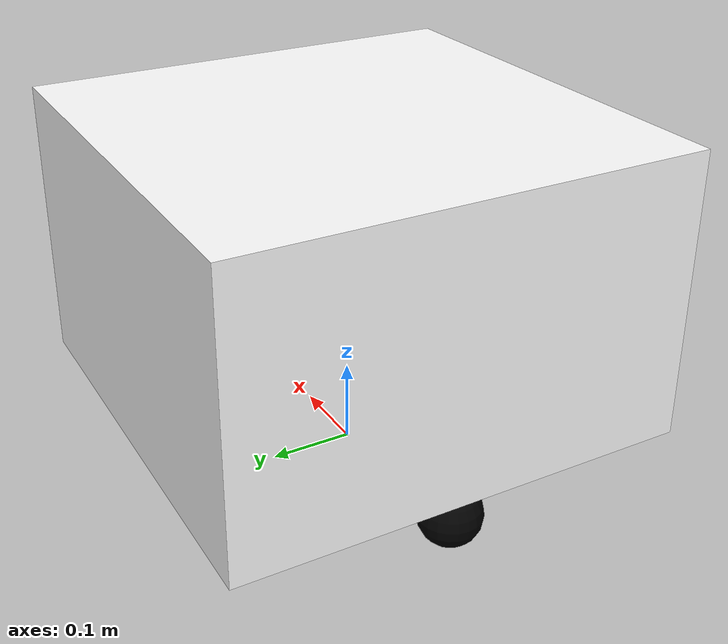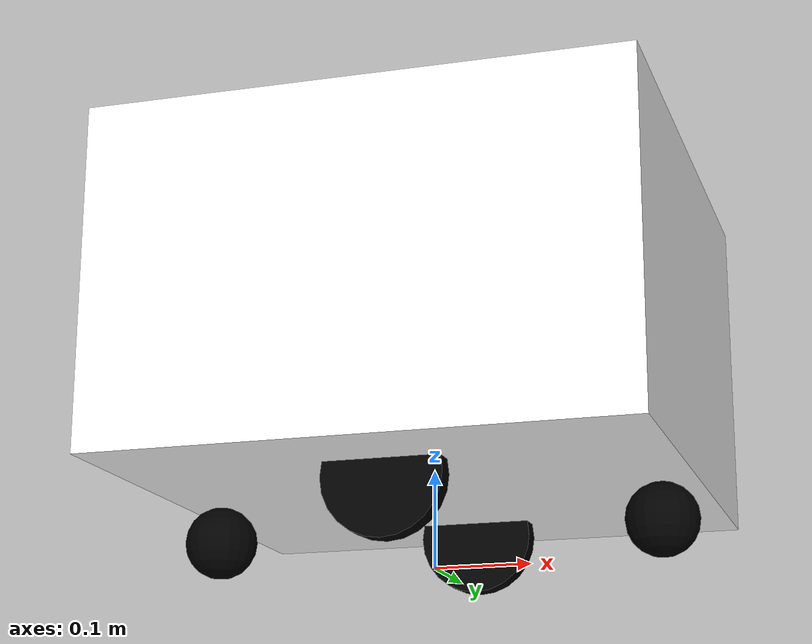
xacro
<?xml version="1.0"?>
<robot xmlns:xacro="http://www.ros.org/wiki/xacro"  name="robot">

    <xacro:include filename="inertial_macros.xacro"/>

    <material name="white">
        <color rgba="1 1 1 1" />
    </material>

    <material name="orange">
        <color rgba="1 0.3 0.1 1"/>
    </material>

    <material name="blue">
        <color rgba="0.2 0.2 1 1"/>
    </material>

    <material name="black">
        <color rgba="0 0 0 1"/>
    </material>

    <!-- base link -->

    <link name="base_link">

    </link>

    <!-- base footprint -->

    <joint name="base_footprint_joint" type="fixed">
        <parent link="base_link"/>
        <child link="base_footprint"/>
        <origin xyz="0 0 0" rpy="0 0 0"/>
    </joint>

    <link name="base_footprint">
    </link>

    <!-- chassis -->

    <joint name="chassis_joint" type="fixed">
        <parent link="base_link"/>
        <child link="chassis"/>
        <origin xyz="0 0 0" rpy="0 0 0"/>
    </joint>

    <link name="chassis">
        <visual>
        <origin xyz="0 0 0.2475"/>
            <geometry>
                <box size="0.54 0.55 0.345"/>
            </geometry>
            <material name="white"/>
        </visual>
        <collision>
        <origin xyz="0.0 0.0 0.2475"/>
            <geometry>
                <box size="0.54 0.55 0.345"/>
            </geometry>
            <material name="white"/>
        </collision>
        <xacro:inertial_box mass="5.0" x="0.54" y="0.55" z="0.345">
            <origin xyz="0 0 0.05" rpy="0 0 0"/>
        </xacro:inertial_box>
    </link>

    <!-- left wheel -->

    <joint name="left_wheel_joint" type="continuous">
        <parent link="base_link"/>
        <child link="left_wheel"/>
        <origin xyz="0 0.1675 0.06" rpy="-${pi/2} 0 0"/>
        <axis xyz="0 0 1"/>
    </joint>

    <link name="left_wheel">
        <visual>
            <geometry>
                <cylinder radius="0.06" length="0.023"/>
            </geometry>
            <material name="black" />
        </visual>
        <collision>
            <geometry>
                <cylinder radius="0.06" length="0.023"/>
            </geometry>
            <material name="black" />
        </collision>
        <xacro:inertial_cylinder mass="0.2" length="0.023" radius="0.06">
            <origin xyz="0 0 0" rpy="0 0 0"/>
        </xacro:inertial_cylinder>
    </link>

    <!-- right wheel -->

    <joint name="right_wheel_joint" type="continuous">
        <parent link="base_link"/>
        <child link="right_wheel"/>
        <origin xyz="0 -0.1675 0.06" rpy="${pi/2} 0 0"/>
        <axis xyz="0 0 -1"/>
    </joint>

    <link name="right_wheel">
        <visual>
            <geometry>
                <cylinder radius="0.06" length="0.023"/>
            </geometry>
            <material name="black" />
        </visual>
        <collision>
            <geometry>
                <cylinder radius="0.06" length="0.023"/>
            </geometry>
            <material name="black" />
        </collision>
        <xacro:inertial_cylinder mass="0.2" length="0.023" radius="0.06">
            <origin xyz="0 0 0" rpy="0 0 0"/>
        </xacro:inertial_cylinder>
    </link>

    <!-- front caster wheel -->
    <joint name="front_caster_joint" type="fixed">
        <parent link="chassis"/>
        <child link="front_caster_wheel"/>
        <origin xyz="0.2325 0 0.0375"/>
    </joint>

    <link name="front_caster_wheel">
        <visual>
            <geometry>
                <sphere radius="0.0375"/>
            </geometry>
            <material name="black"/>
        </visual>
        <collision>
            <geometry>
                <sphere radius="0.0375"/>
            </geometry>
        </collision>
        <xacro:inertial_sphere mass="0.05" radius="0.0375">
            <origin xyz="0 0 0" rpy="0 0 0"/>
        </xacro:inertial_sphere>
    </link>

    <!-- rear caster wheel -->
    <joint name="rear_caster_joint" type="fixed">
        <parent link="chassis"/>
        <child link="rear_caster_wheel"/>
        <origin xyz="-0.2325 0 0.0375"/>
    </joint>

    <link name="rear_caster_wheel">
        <visual>
            <geometry>
                <sphere radius="0.0375"/>
            </geometry>
            <material name="black"/>
        </visual>
        <collision>
            <geometry>
                <sphere radius="0.0375"/>
            </geometry>
        </collision>
        <xacro:inertial_sphere mass="0.05" radius="0.0375">
            <origin xyz="0 0 0" rpy="0 0 0"/>
        </xacro:inertial_sphere>
    </link>

    <!-- Gazebo color ref -->
    <gazebo reference="base_link">
        <material>
            Gazebo/White
        </material>
    </gazebo>

    <gazebo reference="left_wheel">
        <material>
            Gazebo/Black
        </material>
    </gazebo>

    <gazebo reference="right_wheel">
        <material>
            Gazebo/Black
        </material>
    </gazebo>

    <gazebo reference="front_caster_wheel">
        <material>
            Gazebo/Black
        </material>
        <mu1 value="0.001"/>
        <mu2 value="0.001"/>
    </gazebo>

    <gazebo reference="rear_caster_wheel">
        <material>
            Gazebo/Black
        </material>
        <mu1 value="0.001"/>
        <mu2 value="0.001"/>
    </gazebo>

</robot>
